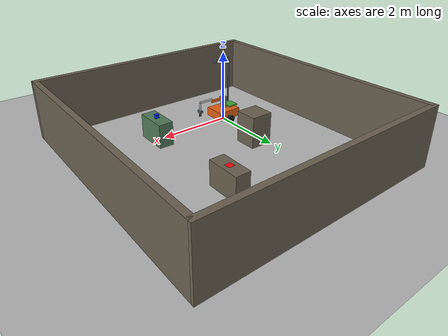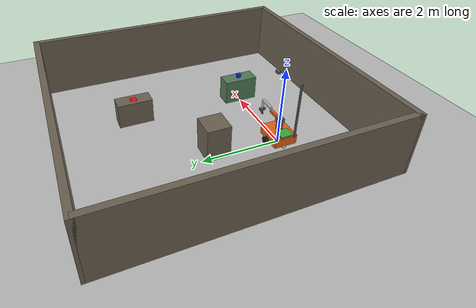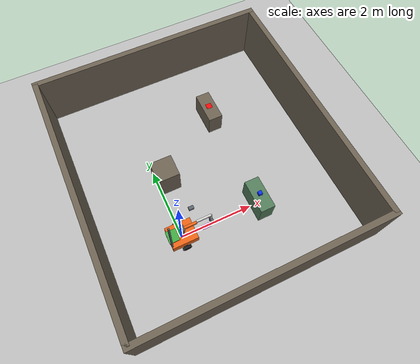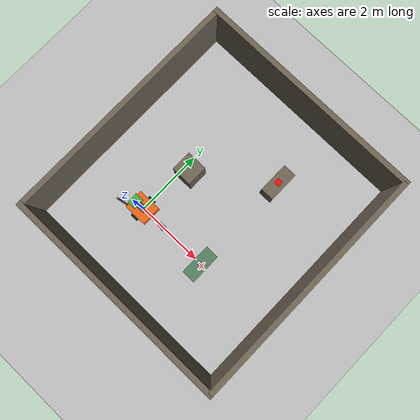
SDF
<?xml version="1.0"?><sdf version="1.9"><world name="material_lab"><physics name="physics" type="ode"><max_step_size>0.001</max_step_size><real_time_factor>1</real_time_factor></physics><plugin filename="gz-sim-physics-system" name="gz::sim::systems::Physics"/><plugin filename="gz-sim-user-commands-system" name="gz::sim::systems::UserCommands"/><plugin filename="gz-sim-scene-broadcaster-system" name="gz::sim::systems::SceneBroadcaster"/><plugin filename="gz-sim-sensors-system" name="gz::sim::systems::Sensors"/><light name="sun" type="directional"><pose>0 0 10 0 0 0</pose><diffuse>0.9 0.9 0.9 1</diffuse><direction>-0.3 0.1 -1</direction><cast_shadows>false</cast_shadows></light><model name="floor"><static>true</static><link name="body"><collision name="collision"><geometry><plane><normal>0 0 1</normal><size>14 14</size></plane></geometry></collision><visual name="visual"><geometry><plane><normal>0 0 1</normal><size>14 14</size></plane></geometry><material><ambient>0.72 0.72 0.72 1</ambient><diffuse>0.72 0.72 0.72 1</diffuse></material></visual></link></model><model name="west"><static>true</static><pose>-2.0 1.5 0.8 0 0 0</pose><link name="body"><visual name="visual"><pose>0 0 0 0 0 0</pose><geometry><box><size>0.15 7.0 1.6</size></box></geometry><material><ambient>0.42 0.38 0.32 1</ambient><diffuse>0.42 0.38 0.32 1</diffuse></material></visual><collision name="collision"><pose>0 0 0 0 0 0</pose><geometry><box><size>0.15 7.0 1.6</size></box></geometry></collision></link></model><model name="east"><static>true</static><pose>4.5 1.5 0.8 0 0 0</pose><link name="body"><visual name="visual"><pose>0 0 0 0 0 0</pose><geometry><box><size>0.15 7.0 1.6</size></box></geometry><material><ambient>0.42 0.38 0.32 1</ambient><diffuse>0.42 0.38 0.32 1</diffuse></material></visual><collision name="collision"><pose>0 0 0 0 0 0</pose><geometry><box><size>0.15 7.0 1.6</size></box></geometry></collision></link></model><model name="south"><static>true</static><pose>1.25 -2.0 0.8 0 0 0</pose><link name="body"><visual name="visual"><pose>0 0 0 0 0 0</pose><geometry><box><size>6.65 0.15 1.6</size></box></geometry><material><ambient>0.42 0.38 0.32 1</ambient><diffuse>0.42 0.38 0.32 1</diffuse></material></visual><collision name="collision"><pose>0 0 0 0 0 0</pose><geometry><box><size>6.65 0.15 1.6</size></box></geometry></collision></link></model><model name="north"><static>true</static><pose>1.25 5.0 0.8 0 0 0</pose><link name="body"><visual name="visual"><pose>0 0 0 0 0 0</pose><geometry><box><size>6.65 0.15 1.6</size></box></geometry><material><ambient>0.42 0.38 0.32 1</ambient><diffuse>0.42 0.38 0.32 1</diffuse></material></visual><collision name="collision"><pose>0 0 0 0 0 0</pose><geometry><box><size>6.65 0.15 1.6</size></box></geometry></collision></link></model><model name="source_table"><static>true</static><pose>2.2 0 0.325 0 0 0</pose><link name="body"><visual name="visual"><pose>0 0 0 0 0 0</pose><geometry><box><size>0.4 0.9 0.65</size></box></geometry><material><ambient>0.32 0.48 0.35 1</ambient><diffuse>0.32 0.48 0.35 1</diffuse></material></visual><collision name="collision"><pose>0 0 0 0 0 0</pose><geometry><box><size>0.4 0.9 0.65</size></box></geometry></collision></link></model><model name="destination_table"><static>true</static><pose>2.2 3 0.325 0 0 0</pose><link name="body"><visual name="visual"><pose>0 0 0 0 0 0</pose><geometry><box><size>0.4 0.9 0.65</size></box></geometry><material><ambient>0.42 0.38 0.32 1</ambient><diffuse>0.42 0.38 0.32 1</diffuse></material></visual><collision name="collision"><pose>0 0 0 0 0 0</pose><geometry><box><size>0.4 0.9 0.65</size></box></geometry></collision></link></model><model name="machine"><static>true</static><pose>0.25 1.6 0.425 0 0 0</pose><link name="body"><visual name="visual"><pose>0 0 0 0 0 0</pose><geometry><box><size>0.6 0.6 0.85</size></box></geometry><material><ambient>0.42 0.38 0.32 1</ambient><diffuse>0.42 0.38 0.32 1</diffuse></material></visual><collision name="collision"><pose>0 0 0 0 0 0</pose><geometry><box><size>0.6 0.6 0.85</size></box></geometry></collision></link></model><model name="placement_marker"><static>true</static><pose>2.2 3 .651 0 0 0</pose><link name="body"><visual name="visual"><pose>0 0 0 0 0 0</pose><geometry><box><size>.16 .16 .002</size></box></geometry><material><ambient>0.95 0.04 0.04 1</ambient><diffuse>0.95 0.04 0.04 1</diffuse></material></visual></link></model><model name="home_marker"><static>true</static><pose>.70 0 .002 0 0 0</pose><link name="body"><visual name="visual"><pose>0 0 0 0 0 0</pose><geometry><box><size>.25 .12 .002</size></box></geometry><material><ambient>0.95 0.04 0.95 1</ambient><diffuse>0.95 0.04 0.95 1</diffuse></material></visual></link></model><model name="material_box"><pose>2.2 0 0.70 0 0 0</pose><link name="body"><inertial><mass>0.15</mass><inertia><ixx>0.0045</ixx><iyy>0.0045</iyy><izz>0.0045</izz></inertia></inertial><visual name="visual"><pose>0 0 0 0 0 0</pose><geometry><box><size>.10 .10 .10</size></box></geometry><material><ambient>0.04 0.18 0.95 1</ambient><diffuse>0.04 0.18 0.95 1</diffuse></material></visual><collision name="collision"><pose>0 0 0 0 0 0</pose><geometry><box><size>.10 .10 .10</size></box></geometry></collision></link></model><model name="mobile_manipulator"><self_collide>false</self_collide><link name="base_link"><pose>0 0 0 0 0 0</pose><inertial><mass>45</mass><inertia><ixx>1.3499999999999999</ixx><iyy>1.3499999999999999</iyy><izz>1.3499999999999999</izz></inertia></inertial><visual name="visual"><pose>0 0 0.24 0 0 0</pose><geometry><box><size>0.70 0.58 0.24</size></box></geometry><material><ambient>0.9 0.38 0.08 1</ambient><diffuse>0.9 0.38 0.08 1</diffuse></material></visual><collision name="collision"><pose>0 0 0.24 0 0 0</pose><geometry><box><size>0.70 0.58 0.24</size></box></geometry></collision></link><link name="left_wheel"><pose relative_to="base_link">0 0.34 0.12 0 0 0</pose><inertial><mass>1</mass><inertia><ixx>0.03</ixx><iyy>0.03</iyy><izz>0.03</izz></inertia></inertial><collision name="collision"><pose>0 0 0 1.57079632679 0 0</pose><geometry><cylinder><radius>0.12</radius><length>0.055</length></cylinder></geometry><surface><friction><ode><mu>1.1</mu><mu2>1.1</mu2></ode></friction></surface></collision><visual name="visual"><pose>0 0 0 1.57079632679 0 0</pose><geometry><cylinder><radius>0.12</radius><length>0.055</length></cylinder></geometry><material><ambient>0.08 0.08 0.08 1</ambient></material></visual></link><link name="right_wheel"><pose relative_to="base_link">0 -0.34 0.12 0 0 0</pose><inertial><mass>1</mass><inertia><ixx>0.03</ixx><iyy>0.03</iyy><izz>0.03</izz></inertia></inertial><collision name="collision"><pose>0 0 0 1.57079632679 0 0</pose><geometry><cylinder><radius>0.12</radius><length>0.055</length></cylinder></geometry><surface><friction><ode><mu>1.1</mu><mu2>1.1</mu2></ode></friction></surface></collision><visual name="visual"><pose>0 0 0 1.57079632679 0 0</pose><geometry><cylinder><radius>0.12</radius><length>0.055</length></cylinder></geometry><material><ambient>0.08 0.08 0.08 1</ambient></material></visual></link><link name="front_caster"><pose relative_to="base_link">0.28 0 0.06 0 0 0</pose><inertial><mass>0.2</mass><inertia><ixx>0.006</ixx><iyy>0.006</iyy><izz>0.006</izz></inertia></inertial><collision name="collision"><geometry><sphere><radius>0.06</radius></sphere></geometry><surface><friction><ode><mu>0.01</mu><mu2>0.01</mu2></ode></friction></surface></collision><visual name="visual"><geometry><sphere><radius>0.06</radius></sphere></geometry></visual></link><link name="rear_caster"><pose relative_to="base_link">-0.28 0 0.06 0 0 0</pose><inertial><mass>0.2</mass><inertia><ixx>0.006</ixx><iyy>0.006</iyy><izz>0.006</izz></inertia></inertial><collision name="collision"><geometry><sphere><radius>0.06</radius></sphere></geometry><surface><friction><ode><mu>0.01</mu><mu2>0.01</mu2></ode></friction></surface></collision><visual name="visual"><geometry><sphere><radius>0.06</radius></sphere></geometry></visual></link><link name="tray"><pose relative_to="base_link">-0.24 0 0.41 0 0 0</pose><inertial><mass>0.5</mass><inertia><ixx>0.015</ixx><iyy>0.015</iyy><izz>0.015</izz></inertia></inertial><visual name="visual"><pose>0 0 0 0 0 0</pose><geometry><box><size>0.28 0.32 0.04</size></box></geometry><material><ambient>0.25 0.65 0.25 1</ambient><diffuse>0.25 0.65 0.25 1</diffuse></material></visual><collision name="collision"><pose>0 0 0 0 0 0</pose><geometry><box><size>0.28 0.32 0.04</size></box></geometry></collision></link><link name="column"><pose relative_to="base_link">0 0 0.48 0 0 0</pose><inertial><mass>2</mass><inertia><ixx>0.06</ixx><iyy>0.06</iyy><izz>0.06</izz></inertia></inertial><visual name="visual"><pose>0 0 0 0 0 0</pose><geometry><box><size>0.12 0.12 0.30</size></box></geometry><material><ambient>0.35 0.38 0.42 1</ambient><diffuse>0.35 0.38 0.42 1</diffuse></material></visual><collision name="collision"><pose>0 0 0 0 0 0</pose><geometry><box><size>0.12 0.12 0.30</size></box></geometry></collision></link><link name="carriage"><pose relative_to="base_link">0 0 0.65 0 0 0</pose><inertial><mass>1</mass><inertia><ixx>0.03</ixx><iyy>0.03</iyy><izz>0.03</izz></inertia></inertial><visual name="visual"><pose>0 0 0 0 0 0</pose><geometry><box><size>0.16 0.16 0.10</size></box></geometry><material><ambient>0.35 0.38 0.42 1</ambient><diffuse>0.35 0.38 0.42 1</diffuse></material></visual><collision name="collision"><pose>0 0 0 0 0 0</pose><geometry><box><size>0.16 0.16 0.10</size></box></geometry></collision></link><link name="upper_arm"><pose relative_to="carriage">0 0 0 0 0 0</pose><inertial><mass>1</mass><inertia><ixx>0.03</ixx><iyy>0.03</iyy><izz>0.03</izz></inertia></inertial><visual name="visual"><pose>0.21 0 0 0 0 0</pose><geometry><box><size>0.42 0.065 0.065</size></box></geometry><material><ambient>0.9 0.38 0.08 1</ambient><diffuse>0.9 0.38 0.08 1</diffuse></material></visual><collision name="collision"><pose>0.21 0 0 0 0 0</pose><geometry><box><size>0.42 0.065 0.065</size></box></geometry></collision></link><link name="forearm"><pose relative_to="upper_arm">0.42 0 0 0 0 0</pose><inertial><mass>0.7</mass><inertia><ixx>0.020999999999999998</ixx><iyy>0.020999999999999998</iyy><izz>0.020999999999999998</izz></inertia></inertial><visual name="visual"><pose>0.2 0 0.065 0 0 0</pose><geometry><box><size>0.40 0.055 0.055</size></box></geometry><material><ambient>0.8 0.8 0.8 1</ambient><diffuse>0.8 0.8 0.8 1</diffuse></material></visual><collision name="collision"><pose>0.2 0 0.065 0 0 0</pose><geometry><box><size>0.40 0.055 0.055</size></box></geometry></collision></link><link name="tool"><pose relative_to="forearm">0.40 0 -0.30 0 0 0</pose><inertial><mass>0.4</mass><inertia><ixx>0.012</ixx><iyy>0.012</iyy><izz>0.012</izz></inertia></inertial><visual name="visual"><pose>0 0 0.10 0 0 0</pose><geometry><box><size>0.075 0.15 0.06</size></box></geometry><material><ambient>0.35 0.38 0.42 1</ambient><diffuse>0.35 0.38 0.42 1</diffuse></material></visual><collision name="collision"><pose>0 0 0.10 0 0 0</pose><geometry><box><size>0.075 0.15 0.06</size></box></geometry></collision><visual name="shaft"><pose>0 0 0.23 0 0 0</pose><geometry><cylinder><radius>0.025</radius><length>0.27</length></cylinder></geometry></visual></link><link name="finger_left_link"><pose relative_to="tool">0 0 0 0 0 0</pose><inertial><mass>0.05</mass><inertia><ixx>0.0015</ixx><iyy>0.0015</iyy><izz>0.0015</izz></inertia></inertial><visual name="visual"><pose>0 0.006 0.015 0 0 0</pose><geometry><box><size>0.08 0.012 0.11</size></box></geometry><material><ambient>0.35 0.38 0.42 1</ambient><diffuse>0.35 0.38 0.42 1</diffuse></material></visual></link><link name="finger_right_link"><pose relative_to="tool">0 0 0 0 0 0</pose><inertial><mass>0.05</mass><inertia><ixx>0.0015</ixx><iyy>0.0015</iyy><izz>0.0015</izz></inertia></inertial><visual name="visual"><pose>0 -0.006 0.015 0 0 0</pose><geometry><box><size>0.08 0.012 0.11</size></box></geometry><material><ambient>0.35 0.38 0.42 1</ambient><diffuse>0.35 0.38 0.42 1</diffuse></material></visual></link><link name="laser_link"><pose relative_to="base_link">0.14 0 0.60 0 0 0</pose><inertial><mass>0.05</mass><inertia><ixx>0.0015</ixx><iyy>0.0015</iyy><izz>0.0015</izz></inertia></inertial><sensor name="lidar" type="gpu_lidar"><gz_frame_id>laser_link</gz_frame_id><topic>/mm/scan</topic><update_rate>10</update_rate><always_on>true</always_on><lidar><scan><horizontal><samples>360</samples><resolution>1</resolution><min_angle>-3.14159265359</min_angle><max_angle>3.14159265359</max_angle></horizontal></scan><range><min>0.12</min><max>12</max></range></lidar></sensor></link><link name="camera_link"><pose relative_to="base_link">0.3 0 1.8 0 0 0</pose><inertial><mass>0.1</mass><inertia><ixx>0.003</ixx><iyy>0.003</iyy><izz>0.003</izz></inertia></inertial><sensor name="camera" type="camera"><pose>0 0 0 0 1.57079632679 0</pose><gz_frame_id>camera_link</gz_frame_id><topic>/mm/camera</topic><update_rate>8</update_rate><always_on>true</always_on><camera><horizontal_fov>1.4</horizontal_fov><image><width>640</width><height>480</height><format>R8G8B8</format></image><clip><near>0.05</near><far>8</far></clip></camera></sensor><visual name="visual"><pose>0 0 0 0 0 0</pose><geometry><box><size>.12 .08 .06</size></box></geometry><material><ambient>0.35 0.38 0.42 1</ambient><diffuse>0.35 0.38 0.42 1</diffuse></material></visual><collision name="collision"><pose>0 0 0 0 0 0</pose><geometry><box><size>.12 .08 .06</size></box></geometry></collision></link><link name="camera_mast"><pose relative_to="base_link">-0.34 -0.22 1.03 0 0 0</pose><inertial><mass>0.3</mass><inertia><ixx>0.009</ixx><iyy>0.009</iyy><izz>0.009</izz></inertia></inertial><visual name="visual"><pose>0 0 0 0 0 0</pose><geometry><box><size>.04 .04 1.45</size></box></geometry><material><ambient>0.35 0.38 0.42 1</ambient><diffuse>0.35 0.38 0.42 1</diffuse></material></visual><collision name="collision"><pose>0 0 0 0 0 0</pose><geometry><box><size>.04 .04 1.45</size></box></geometry></collision></link><joint name="left_wheel_joint" type="revolute"><pose relative_to="left_wheel">0 0 0 0 0 0</pose><parent>base_link</parent><child>left_wheel</child><axis><xyz>0 1 0</xyz><limit><lower>-1000000000000.0</lower><upper>1000000000000.0</upper><effort>1000</effort><velocity>8.0</velocity></limit><dynamics><damping>0.1</damping></dynamics></axis></joint><joint name="right_wheel_joint" type="revolute"><pose relative_to="right_wheel">0 0 0 0 0 0</pose><parent>base_link</parent><child>right_wheel</child><axis><xyz>0 1 0</xyz><limit><lower>-1000000000000.0</lower><upper>1000000000000.0</upper><effort>1000</effort><velocity>8.0</velocity></limit><dynamics><damping>0.1</damping></dynamics></axis></joint><joint name="front_caster_joint" type="fixed"><pose relative_to="front_caster">0 0 0 0 0 0</pose><parent>base_link</parent><child>front_caster</child></joint><joint name="rear_caster_joint" type="fixed"><pose relative_to="rear_caster">0 0 0 0 0 0</pose><parent>base_link</parent><child>rear_caster</child></joint><joint name="tray_joint" type="fixed"><pose relative_to="tray">0 0 0 0 0 0</pose><parent>base_link</parent><child>tray</child></joint><joint name="column_joint" type="fixed"><pose relative_to="column">0 0 0 0 0 0</pose><parent>base_link</parent><child>column</child></joint><joint name="lift" type="prismatic"><pose relative_to="carriage">0 0 0 0 0 0</pose><parent>base_link</parent><child>carriage</child><axis><xyz>0 0 1</xyz><limit><lower>0</lower><upper>0.55</upper><effort>1000</effort><velocity>0.6</velocity></limit><dynamics><damping>0.1</damping></dynamics></axis></joint><joint name="shoulder" type="revolute"><pose relative_to="upper_arm">0 0 0 0 0 0</pose><parent>carriage</parent><child>upper_arm</child><axis><xyz>0 0 1</xyz><limit><lower>-3.14</lower><upper>3.14</upper><effort>1000</effort><velocity>0.6</velocity></limit><dynamics><damping>0.1</damping></dynamics></axis></joint><joint name="elbow" type="revolute"><pose relative_to="forearm">0 0 0 0 0 0</pose><parent>upper_arm</parent><child>forearm</child><axis><xyz>0 0 1</xyz><limit><lower>-3.14</lower><upper>3.14</upper><effort>1000</effort><velocity>0.6</velocity></limit><dynamics><damping>0.1</damping></dynamics></axis></joint><joint name="wrist" type="revolute"><pose relative_to="tool">0 0 0 0 0 0</pose><parent>forearm</parent><child>tool</child><axis><xyz>0 0 1</xyz><limit><lower>-3.14</lower><upper>3.14</upper><effort>1000</effort><velocity>0.6</velocity></limit><dynamics><damping>0.1</damping></dynamics></axis></joint><joint name="finger_left" type="prismatic"><pose relative_to="finger_left_link">0 0 0 0 0 0</pose><parent>tool</parent><child>finger_left_link</child><axis><xyz>0 1 0</xyz><limit><lower>0.05</lower><upper>0.095</upper><effort>1000</effort><velocity>0.6</velocity></limit><dynamics><damping>0.1</damping></dynamics></axis></joint><joint name="finger_right" type="prismatic"><pose relative_to="finger_right_link">0 0 0 0 0 0</pose><parent>tool</parent><child>finger_right_link</child><axis><xyz>0 -1 0</xyz><limit><lower>0.05</lower><upper>0.095</upper><effort>1000</effort><velocity>0.6</velocity></limit><dynamics><damping>0.1</damping></dynamics></axis></joint><joint name="laser_joint" type="fixed"><pose relative_to="laser_link">0 0 0 0 0 0</pose><parent>base_link</parent><child>laser_link</child></joint><joint name="camera_joint" type="fixed"><pose relative_to="camera_link">0 0 0 0 0 0</pose><parent>base_link</parent><child>camera_link</child></joint><joint name="mast_joint" type="fixed"><pose relative_to="camera_mast">0 0 0 0 0 0</pose><parent>base_link</parent><child>camera_mast</child></joint><plugin filename="gz-sim-diff-drive-system" name="gz::sim::systems::DiffDrive"><left_joint>left_wheel_joint</left_joint><right_joint>right_wheel_joint</right_joint><wheel_separation>0.68</wheel_separation><wheel_radius>0.12</wheel_radius><topic>/mm/cmd_vel</topic><odom_topic>/mm/odom</odom_topic><frame_id>odom</frame_id><child_frame_id>base_link</child_frame_id><odom_publish_frequency>30</odom_publish_frequency><max_linear_acceleration>0.4</max_linear_acceleration><max_angular_acceleration>0.7</max_angular_acceleration></plugin><plugin filename="gz-sim-joint-state-publisher-system" name="gz::sim::systems::JointStatePublisher"><topic>/mm/joint_states</topic></plugin><plugin filename="gz-sim-joint-position-controller-system" name="gz::sim::systems::JointPositionController"><joint_name>shoulder</joint_name><topic>/mm/joint/shoulder</topic><p_gain>6</p_gain><use_velocity_commands>true</use_velocity_commands><cmd_max>0.5</cmd_max><cmd_min>-0.5</cmd_min></plugin><plugin filename="gz-sim-joint-position-controller-system" name="gz::sim::systems::JointPositionController"><joint_name>elbow</joint_name><topic>/mm/joint/elbow</topic><p_gain>6</p_gain><use_velocity_commands>true</use_velocity_commands><cmd_max>0.5</cmd_max><cmd_min>-0.5</cmd_min></plugin><plugin filename="gz-sim-joint-position-controller-system" name="gz::sim::systems::JointPositionController"><joint_name>lift</joint_name><topic>/mm/joint/lift</topic><p_gain>500</p_gain><i_gain>30</i_gain><d_gain>70</d_gain><i_max>10</i_max><i_min>-10</i_min><cmd_offset>31.392</cmd_offset><cmd_max>100</cmd_max><cmd_min>-100</cmd_min></plugin><plugin filename="gz-sim-joint-position-controller-system" name="gz::sim::systems::JointPositionController"><joint_name>wrist</joint_name><topic>/mm/joint/wrist</topic><p_gain>6</p_gain><use_velocity_commands>true</use_velocity_commands><cmd_max>0.5</cmd_max><cmd_min>-0.5</cmd_min></plugin><plugin filename="gz-sim-joint-position-controller-system" name="gz::sim::systems::JointPositionController"><joint_name>finger_left</joint_name><topic>/mm/joint/finger_left</topic><p_gain>6</p_gain><use_velocity_commands>true</use_velocity_commands><cmd_max>0.5</cmd_max><cmd_min>-0.5</cmd_min></plugin><plugin filename="gz-sim-joint-position-controller-system" name="gz::sim::systems::JointPositionController"><joint_name>finger_right</joint_name><topic>/mm/joint/finger_right</topic><p_gain>6</p_gain><use_velocity_commands>true</use_velocity_commands><cmd_max>0.5</cmd_max><cmd_min>-0.5</cmd_min></plugin><plugin filename="libguarded_grasp.so" name="mm003::GuardedGrasp"/></model></world></sdf>
